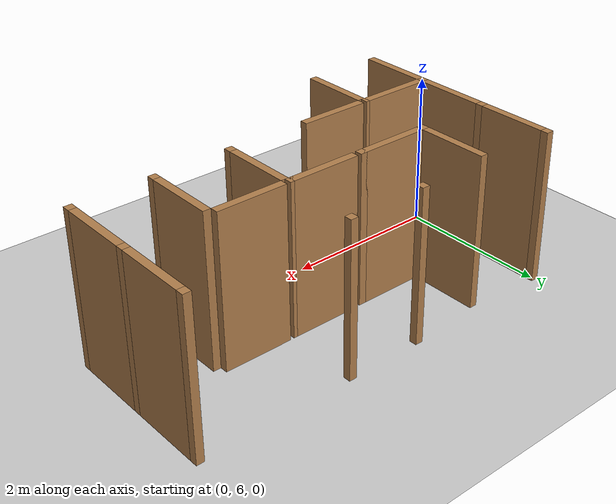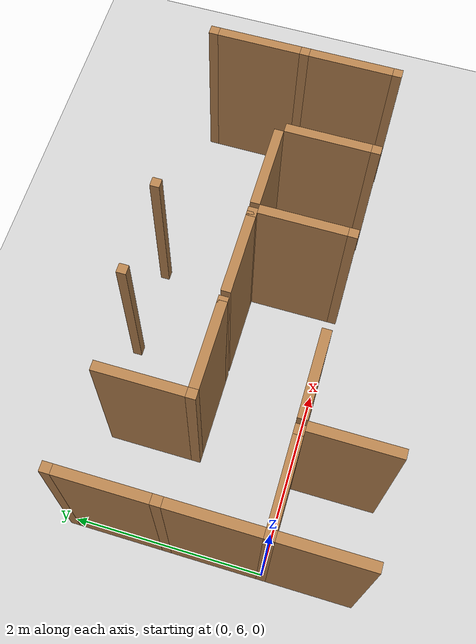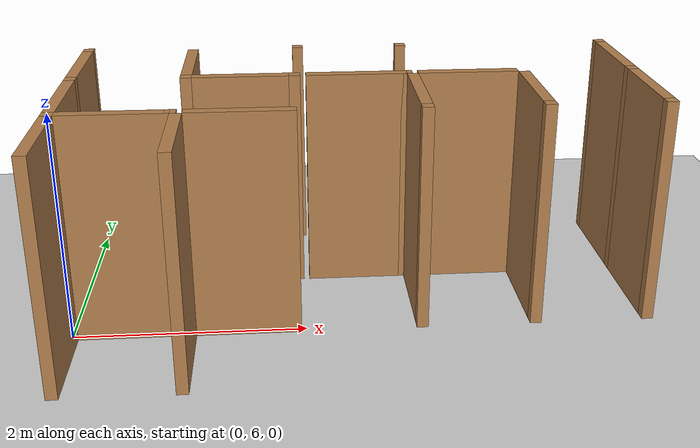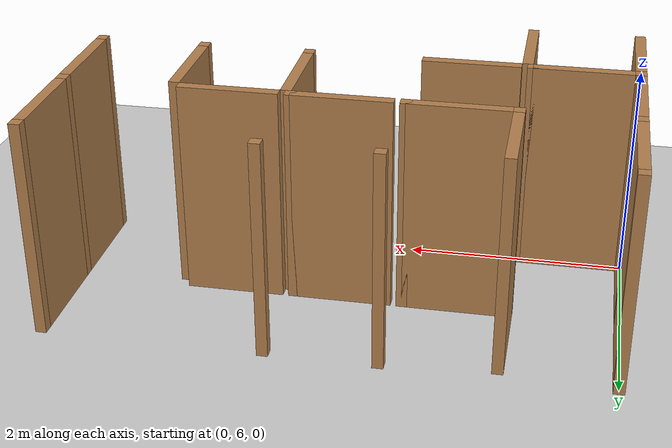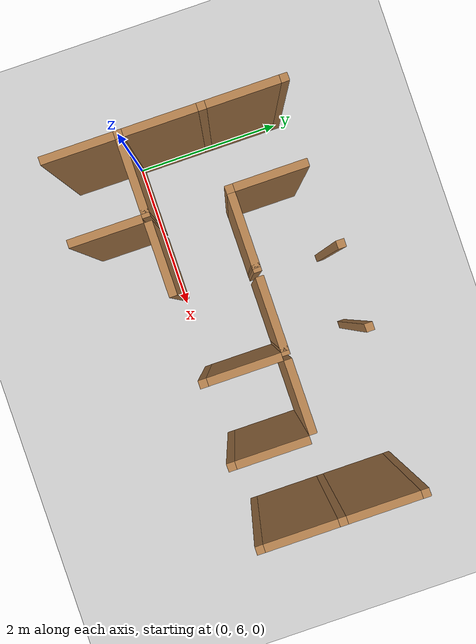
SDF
<sdf version="1.6">
 <world name="default">
  <include><uri>model://sun</uri></include>
  <model name="ground_plane">
   <static>true</static>
   <link name="link">
    <collision name="collision"><geometry><plane><size>12.0 12.0</size></plane></geometry></collision>
    <visual name="visual">
     <cast_shadows>false</cast_shadows>
     <geometry><plane><size>12.0 12.0</size></plane></geometry>
     <material>
      <script><uri>file://media/materials/scripts/gazebo.material</uri><name>Gazebo/Grey</name></script>
     </material>
    </visual>
   </link>
   <pose>6.0 6.0 0 0 0 0</pose>
  </model>
  <model name="vwall_5_0">
   <pose>0.0 5.5 1.0 0 0 0</pose>
   <link name="link">
    <collision name="collision"><geometry><box><size>0.1 0.9 2</size></box></geometry></collision>
    <visual name="visual">
     <geometry><box><size>0.1 0.9 2</size></box></geometry>
     <material>
      <script><uri>file://media/materials/scripts/gazebo.material</uri><name>Gazebo/Wood</name></script>
     </material>
    </visual>
   </link>
  </model>
  <model name="vwall_5_1">
   <pose>1.0 5.5 1.0 0 0 0</pose>
   <link name="link">
    <collision name="collision"><geometry><box><size>0.1 0.9 2</size></box></geometry></collision>
    <visual name="visual">
     <geometry><box><size>0.1 0.9 2</size></box></geometry>
     <material>
      <script><uri>file://media/materials/scripts/gazebo.material</uri><name>Gazebo/Wood</name></script>
     </material>
    </visual>
   </link>
  </model>
  <model name="vwall_6_0">
   <pose>0.0 6.5 1.0 0 0 0</pose>
   <link name="link">
    <collision name="collision"><geometry><box><size>0.1 0.9 2</size></box></geometry></collision>
    <visual name="visual">
     <geometry><box><size>0.1 0.9 2</size></box></geometry>
     <material>
      <script><uri>file://media/materials/scripts/gazebo.material</uri><name>Gazebo/Wood</name></script>
     </material>
    </visual>
   </link>
  </model>
  <model name="joint_0.0_6.0">
   <pose>0.0 6.0 1.0 0 0 0</pose>
   <link name="link">
    <collision name="collision"><geometry><box><size>0.1 0.1 2</size></box></geometry></collision>
    <visual name="visual">
     <geometry><box><size>0.1 0.1 2</size></box></geometry>
     <material>
      <script><uri>file://media/materials/scripts/gazebo.material</uri><name>Gazebo/Wood</name></script>
     </material>
    </visual>
   </link>
  </model>
  <model name="vwall_6_3">
   <pose>3.0 6.5 1.0 0 0 0</pose>
   <link name="link">
    <collision name="collision"><geometry><box><size>0.1 0.9 2</size></box></geometry></collision>
    <visual name="visual">
     <geometry><box><size>0.1 0.9 2</size></box></geometry>
     <material>
      <script><uri>file://media/materials/scripts/gazebo.material</uri><name>Gazebo/Wood</name></script>
     </material>
    </visual>
   </link>
  </model>
  <model name="joint_3.0_6.0">
   <pose>3.0 6.0 1.0 0 0 0</pose>
   <link name="link">
    <collision name="collision"><geometry><box><size>0.1 0.1 2</size></box></geometry></collision>
    <visual name="visual">
     <geometry><box><size>0.1 0.1 2</size></box></geometry>
     <material>
      <script><uri>file://media/materials/scripts/gazebo.material</uri><name>Gazebo/Wood</name></script>
     </material>
    </visual>
   </link>
  </model>
  <model name="vwall_6_4">
   <pose>4.0 6.5 1.0 0 0 0</pose>
   <link name="link">
    <collision name="collision"><geometry><box><size>0.1 0.9 2</size></box></geometry></collision>
    <visual name="visual">
     <geometry><box><size>0.1 0.9 2</size></box></geometry>
     <material>
      <script><uri>file://media/materials/scripts/gazebo.material</uri><name>Gazebo/Wood</name></script>
     </material>
    </visual>
   </link>
  </model>
  <model name="joint_4.0_6.0">
   <pose>4.0 6.0 1.0 0 0 0</pose>
   <link name="link">
    <collision name="collision"><geometry><box><size>0.1 0.1 2</size></box></geometry></collision>
    <visual name="visual">
     <geometry><box><size>0.1 0.1 2</size></box></geometry>
     <material>
      <script><uri>file://media/materials/scripts/gazebo.material</uri><name>Gazebo/Wood</name></script>
     </material>
    </visual>
   </link>
  </model>
  <model name="vwall_6_5">
   <pose>5.0 6.5 1.0 0 0 0</pose>
   <link name="link">
    <collision name="collision"><geometry><box><size>0.1 0.9 2</size></box></geometry></collision>
    <visual name="visual">
     <geometry><box><size>0.1 0.9 2</size></box></geometry>
     <material>
      <script><uri>file://media/materials/scripts/gazebo.material</uri><name>Gazebo/Wood</name></script>
     </material>
    </visual>
   </link>
  </model>
  <model name="joint_5.0_6.0">
   <pose>5.0 6.0 1.0 0 0 0</pose>
   <link name="link">
    <collision name="collision"><geometry><box><size>0.1 0.1 2</size></box></geometry></collision>
    <visual name="visual">
     <geometry><box><size>0.1 0.1 2</size></box></geometry>
     <material>
      <script><uri>file://media/materials/scripts/gazebo.material</uri><name>Gazebo/Wood</name></script>
     </material>
    </visual>
   </link>
  </model>
  <model name="vwall_7_0">
   <pose>0.0 7.5 1.0 0 0 0</pose>
   <link name="link">
    <collision name="collision"><geometry><box><size>0.1 0.9 2</size></box></geometry></collision>
    <visual name="visual">
     <geometry><box><size>0.1 0.9 2</size></box></geometry>
     <material>
      <script><uri>file://media/materials/scripts/gazebo.material</uri><name>Gazebo/Wood</name></script>
     </material>
    </visual>
   </link>
  </model>
  <model name="joint_0.0_7.0">
   <pose>0.0 7.0 1.0 0 0 0</pose>
   <link name="link">
    <collision name="collision"><geometry><box><size>0.1 0.1 2</size></box></geometry></collision>
    <visual name="visual">
     <geometry><box><size>0.1 0.1 2</size></box></geometry>
     <material>
      <script><uri>file://media/materials/scripts/gazebo.material</uri><name>Gazebo/Wood</name></script>
     </material>
    </visual>
   </link>
  </model>
  <model name="vwall_7_1">
   <pose>1.0 7.5 1.0 0 0 0</pose>
   <link name="link">
    <collision name="collision"><geometry><box><size>0.1 0.9 2</size></box></geometry></collision>
    <visual name="visual">
     <geometry><box><size>0.1 0.9 2</size></box></geometry>
     <material>
      <script><uri>file://media/materials/scripts/gazebo.material</uri><name>Gazebo/Wood</name></script>
     </material>
    </visual>
   </link>
  </model>
  <model name="joint_1.0_7.0">
   <pose>1.0 7.0 1.0 0 0 0</pose>
   <link name="link">
    <collision name="collision"><geometry><box><size>0.1 0.1 2</size></box></geometry></collision>
    <visual name="visual">
     <geometry><box><size>0.1 0.1 2</size></box></geometry>
     <material>
      <script><uri>file://media/materials/scripts/gazebo.material</uri><name>Gazebo/Wood</name></script>
     </material>
    </visual>
   </link>
  </model>
  <model name="vwall_7_5">
   <pose>5.0 7.5 1.0 0 0 0</pose>
   <link name="link">
    <collision name="collision"><geometry><box><size>0.1 0.9 2</size></box></geometry></collision>
    <visual name="visual">
     <geometry><box><size>0.1 0.9 2</size></box></geometry>
     <material>
      <script><uri>file://media/materials/scripts/gazebo.material</uri><name>Gazebo/Wood</name></script>
     </material>
    </visual>
   </link>
  </model>
  <model name="joint_5.0_7.0">
   <pose>5.0 7.0 1.0 0 0 0</pose>
   <link name="link">
    <collision name="collision"><geometry><box><size>0.1 0.1 2</size></box></geometry></collision>
    <visual name="visual">
     <geometry><box><size>0.1 0.1 2</size></box></geometry>
     <material>
      <script><uri>file://media/materials/scripts/gazebo.material</uri><name>Gazebo/Wood</name></script>
     </material>
    </visual>
   </link>
  </model>
  <model name="joint_0.0_8.0">
   <pose>0.0 8.0 1.0 0 0 0</pose>
   <link name="link">
    <collision name="collision"><geometry><box><size>0.1 0.1 2</size></box></geometry></collision>
    <visual name="visual">
     <geometry><box><size>0.1 0.1 2</size></box></geometry>
     <material>
      <script><uri>file://media/materials/scripts/gazebo.material</uri><name>Gazebo/Wood</name></script>
     </material>
    </visual>
   </link>
  </model>
  <model name="joint_2.0_8.0">
   <pose>2.0 8.0 1.0 0 0 0</pose>
   <link name="link">
    <collision name="collision"><geometry><box><size>0.1 0.1 2</size></box></geometry></collision>
    <visual name="visual">
     <geometry><box><size>0.1 0.1 2</size></box></geometry>
     <material>
      <script><uri>file://media/materials/scripts/gazebo.material</uri><name>Gazebo/Wood</name></script>
     </material>
    </visual>
   </link>
  </model>
  <model name="joint_3.0_8.0">
   <pose>3.0 8.0 1.0 0 0 0</pose>
   <link name="link">
    <collision name="collision"><geometry><box><size>0.1 0.1 2</size></box></geometry></collision>
    <visual name="visual">
     <geometry><box><size>0.1 0.1 2</size></box></geometry>
     <material>
      <script><uri>file://media/materials/scripts/gazebo.material</uri><name>Gazebo/Wood</name></script>
     </material>
    </visual>
   </link>
  </model>
  <model name="joint_5.0_8.0">
   <pose>5.0 8.0 1.0 0 0 0</pose>
   <link name="link">
    <collision name="collision"><geometry><box><size>0.1 0.1 2</size></box></geometry></collision>
    <visual name="visual">
     <geometry><box><size>0.1 0.1 2</size></box></geometry>
     <material>
      <script><uri>file://media/materials/scripts/gazebo.material</uri><name>Gazebo/Wood</name></script>
     </material>
    </visual>
   </link>
  </model>
  <model name="hwall_6_0">
   <pose>0.5 6.0 1.0 0 0 0</pose>
   <link name="link">
    <collision name="collision"><geometry><box><size>0.9 0.1 2</size></box></geometry></collision>
    <visual name="visual">
     <geometry><box><size>0.9 0.1 2</size></box></geometry>
     <material>
      <script><uri>file://media/materials/scripts/gazebo.material</uri><name>Gazebo/Wood</name></script>
     </material>
    </visual>
   </link>
  </model>
  <model name="joint_0.95_6.0">
   <pose>0.95 6.0 1.0 0 0 0</pose>
   <link name="link">
    <collision name="collision"><geometry><box><size>0.1 0.1 2</size></box></geometry></collision>
    <visual name="visual">
     <geometry><box><size>0.1 0.1 2</size></box></geometry>
     <material>
      <script><uri>file://media/materials/scripts/gazebo.material</uri><name>Gazebo/Wood</name></script>
     </material>
    </visual>
   </link>
  </model>
  <model name="hwall_6_1">
   <pose>1.5 6.0 1.0 0 0 0</pose>
   <link name="link">
    <collision name="collision"><geometry><box><size>0.9 0.1 2</size></box></geometry></collision>
    <visual name="visual">
     <geometry><box><size>0.9 0.1 2</size></box></geometry>
     <material>
      <script><uri>file://media/materials/scripts/gazebo.material</uri><name>Gazebo/Wood</name></script>
     </material>
    </visual>
   </link>
  </model>
  <model name="hwall_7_1">
   <pose>1.5 7.0 1.0 0 0 0</pose>
   <link name="link">
    <collision name="collision"><geometry><box><size>0.9 0.1 2</size></box></geometry></collision>
    <visual name="visual">
     <geometry><box><size>0.9 0.1 2</size></box></geometry>
     <material>
      <script><uri>file://media/materials/scripts/gazebo.material</uri><name>Gazebo/Wood</name></script>
     </material>
    </visual>
   </link>
  </model>
  <model name="joint_1.95_7.0">
   <pose>1.95 7.0 1.0 0 0 0</pose>
   <link name="link">
    <collision name="collision"><geometry><box><size>0.1 0.1 2</size></box></geometry></collision>
    <visual name="visual">
     <geometry><box><size>0.1 0.1 2</size></box></geometry>
     <material>
      <script><uri>file://media/materials/scripts/gazebo.material</uri><name>Gazebo/Wood</name></script>
     </material>
    </visual>
   </link>
  </model>
  <model name="hwall_7_2">
   <pose>2.5 7.0 1.0 0 0 0</pose>
   <link name="link">
    <collision name="collision"><geometry><box><size>0.9 0.1 2</size></box></geometry></collision>
    <visual name="visual">
     <geometry><box><size>0.9 0.1 2</size></box></geometry>
     <material>
      <script><uri>file://media/materials/scripts/gazebo.material</uri><name>Gazebo/Wood</name></script>
     </material>
    </visual>
   </link>
  </model>
  <model name="joint_2.95_7.0">
   <pose>2.95 7.0 1.0 0 0 0</pose>
   <link name="link">
    <collision name="collision"><geometry><box><size>0.1 0.1 2</size></box></geometry></collision>
    <visual name="visual">
     <geometry><box><size>0.1 0.1 2</size></box></geometry>
     <material>
      <script><uri>file://media/materials/scripts/gazebo.material</uri><name>Gazebo/Wood</name></script>
     </material>
    </visual>
   </link>
  </model>
  <model name="hwall_7_3">
   <pose>3.5 7.0 1.0 0 0 0</pose>
   <link name="link">
    <collision name="collision"><geometry><box><size>0.9 0.1 2</size></box></geometry></collision>
    <visual name="visual">
     <geometry><box><size>0.9 0.1 2</size></box></geometry>
     <material>
      <script><uri>file://media/materials/scripts/gazebo.material</uri><name>Gazebo/Wood</name></script>
     </material>
    </visual>
   </link>
  </model>
 </world>
</sdf>
